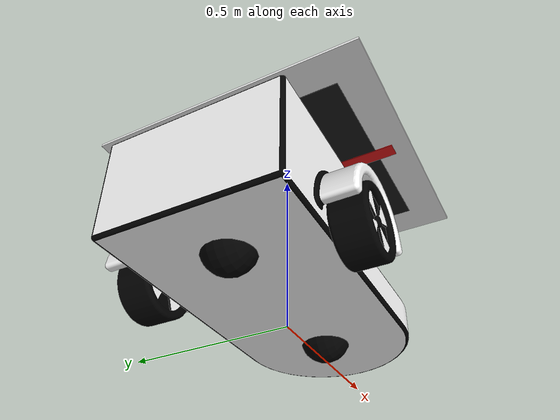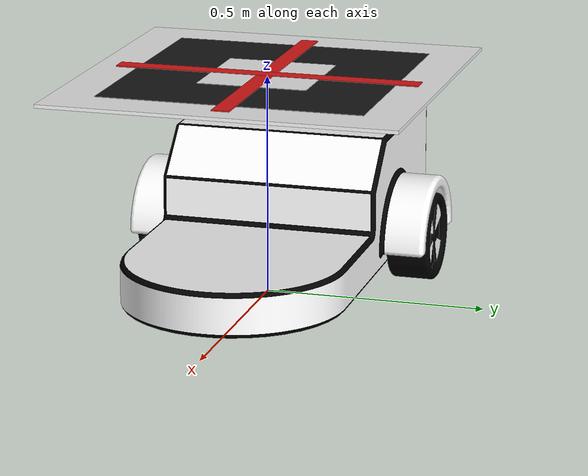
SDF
<?xml version="1.0"?>
<sdf version="1.6">
  <model name='rover_differential_aruco'>
    <!--Links-->
    <link name='base_link'>
      <pose relative_to='__model__'>0 0 0.1 0 0 0</pose>
      <inertial>
        <mass>5.0</mass>
        <pose>-0.2 0 0 0 0 0</pose> <!-- Center of mass offset to wheel axis-->
        <inertia>
          <ixx>0.030208333</ixx>
          <ixy>0.0</ixy>
          <ixz>0.0</ixz>
          <iyy>0.108333333</iyy>
          <iyz>0.0</iyz>
          <izz>0.130208333</izz>
        </inertia>
      </inertial>
      <visual name='visual'>
        <pose>0 0 -0.05 0 0 0</pose>
        <geometry>
          <mesh>
            <uri>model://rover_differential/meshes/rover_differential_base.dae</uri>
          </mesh>
        </geometry>
      </visual>
      <collision name='collision'>
        <geometry>
          <box>
            <size>1 0.5 0.1</size>
          </box>
        </geometry>
      </collision>

      <!--Sensors-->
      <sensor name="air_pressure_sensor" type="air_pressure">
        <gz_frame_id>base_link</gz_frame_id>
        <always_on>1</always_on>
        <update_rate>50</update_rate>
        <air_pressure>
          <!-- Noise modeled after BMP390 -->
          <pressure>
            <noise type="gaussian">
              <mean>0</mean>
              <stddev>3</stddev>
            </noise>
          </pressure>
        </air_pressure>
      </sensor>
      <sensor name="magnetometer_sensor" type="magnetometer">
        <gz_frame_id>base_link</gz_frame_id>
        <always_on>1</always_on>
        <update_rate>100</update_rate>
        <magnetometer>
          <!-- TODO: update to fix units and coordinate system when we move past Harmonic -->
          <!-- See https://github.com/gazebosim/gz-sim/pull/2460 -->
          <!-- 3mgauss RMS: NOTE: noise is in tesla but sensor reports data in gauss -->
          <!-- Noise modeled after IIS2MDC -->
          <x>
            <noise type="gaussian">
              <stddev>0.0001</stddev>
            </noise>
          </x>
          <y>
            <noise type="gaussian">
              <stddev>0.0001</stddev>
            </noise>
          </y>
          <z>
            <noise type="gaussian">
              <stddev>0.0001</stddev>
            </noise>
          </z>
        </magnetometer>
      </sensor>
      <sensor name="imu_sensor" type="imu">
        <gz_frame_id>base_link</gz_frame_id>
        <always_on>1</always_on>
        <update_rate>250</update_rate>
        <imu>
          <angular_velocity>
            <!-- Noise modeled after IIM42653 -->
            <!-- 0.05 deg/s converted to rad/s -->
            <x>
              <noise type="gaussian">
                <mean>0.0</mean>
                <stddev>0.0008726646</stddev>
              </noise>
            </x>
            <y>
              <noise type="gaussian">
                <mean>0.0</mean>
                <stddev>0.0008726646</stddev>
              </noise>
            </y>
            <z>
              <noise type="gaussian">
                <mean>0.0</mean>
                <stddev>0.0008726646</stddev>
              </noise>
            </z>
          </angular_velocity>
          <linear_acceleration>
            <!-- Noise modeled after IIM42653 -->
            <!-- X & Y axis: 0.65 mg-rms converted to m/ss -->
            <x>
              <noise type="gaussian">
                <mean>0.0</mean>
                <stddev>0.00637</stddev>
              </noise>
            </x>
            <y>
              <noise type="gaussian">
                <mean>0.0</mean>
                <stddev>0.00637</stddev>
              </noise>
            </y>
            <!-- Z axis: 0.70 mg-rms converted to m/ss-->
            <z>
              <noise type="gaussian">
                <mean>0.0</mean>
                <stddev>0.00686</stddev>
              </noise>
            </z>
          </linear_acceleration>
        </imu>
      </sensor>
      <sensor name="navsat_sensor" type="navsat">
        <gz_frame_id>base_link</gz_frame_id>
        <always_on>1</always_on>
        <update_rate>30</update_rate>
      </sensor>
    </link>

    <link name='wheel_rear_left_link'>
      <pose relative_to="base_link">-0.2 0.3 0 -1.5707 0 0</pose>
      <inertial>
        <mass>0.5</mass>
        <inertia>
          <ixx>0.000807292</ixx>
          <ixy>0</ixy>
          <ixz>0</ixz>
          <iyy>0.000807292</iyy>
          <iyz>0</iyz>
          <izz>0.00140625</izz>
        </inertia>
      </inertial>
      <visual name='visual'>
        <pose>0 0 0 0 0 0</pose>
        <geometry>
          <mesh>
            <uri>model://rover_differential/meshes/rover_differential_wheel.dae</uri>
          </mesh>
        </geometry>
      </visual>
      <collision name='collision'>
        <geometry>
          <cylinder>
            <radius>0.1</radius>
            <length>0.1</length>
          </cylinder>
        </geometry>
        <surface>
          <friction>
            <ode>
              <mu>1.0</mu>
              <mu2>1.0</mu2>
              <fdir1>1 0 0</fdir1>
              <slip1>0.0</slip1>
              <slip2>0.0</slip2>
            </ode>
          </friction>
        </surface>
      </collision>
    </link>

    <link name='wheel_rear_right_link'>
      <pose relative_to="base_link">-0.2 -0.3 0 -1.5707 0 0</pose>
      <inertial>
        <mass>0.5</mass>
        <inertia>
          <ixx>0.000807292</ixx>
          <ixy>0</ixy>
          <ixz>0</ixz>
          <iyy>0.000807292</iyy>
          <iyz>0</iyz>
          <izz>0.00140625</izz>
        </inertia>
      </inertial>
      <visual name='visual'>
        <pose>0 0 0 0 0 0</pose>
        <geometry>
          <mesh>
            <uri>model://rover_differential/meshes/rover_differential_wheel.dae</uri>
          </mesh>
        </geometry>
      </visual>
      <collision name='collision'>
        <geometry>
          <cylinder>
            <radius>0.1</radius>
            <length>0.1</length>
          </cylinder>
        </geometry>
        <surface>
          <friction>
            <ode>
              <mu>1.0</mu>
              <mu2>1.0</mu2>
              <fdir1>1 0 0</fdir1>
              <slip1>0.0</slip1>
              <slip2>0.0</slip2>
            </ode>
          </friction>
        </surface>
      </collision>
    </link>

    <link name='cast_wheel_front_link'>
      <pose relative_to="base_link">0.25 0 -0.025 -1.5707 0 0</pose>
      <inertial>
        <mass>1</mass>
        <inertia>
          <ixx>0.016</ixx>
          <ixy>0</ixy>
          <ixz>0</ixz>
          <iyy>0.016</iyy>
          <iyz>0</iyz>
          <izz>0.016</izz>
        </inertia>
      </inertial>
      <visual name='visual'>
        <geometry>
          <sphere>
            <radius>0.075</radius>
          </sphere>
        </geometry>
        <material>
          <ambient>0 0 0 1</ambient>
          <diffuse>0 0 0 1</diffuse>
          <specular>0 0 0 0</specular>
          <emissive>0 0 0 1</emissive>
        </material>
      </visual>
      <collision name='collision'>
        <geometry>
          <sphere>
            <radius>0.075</radius>
          </sphere>
        </geometry>
        <surface>
          <friction>
            <ode>
              <mu>0</mu>
              <mu2>0</mu2>
              <fdir1>1 0 0</fdir1>
            </ode>
          </friction>
        </surface>
      </collision>
    </link>

    <link name='cast_wheel_rear_link'>
      <pose relative_to="base_link">-0.3 0 -0.025 -1.5707 0 0</pose>
      <inertial>
        <mass>1</mass>
        <inertia>
          <ixx>0.016</ixx>
          <ixy>0</ixy>
          <ixz>0</ixz>
          <iyy>0.016</iyy>
          <iyz>0</iyz>
          <izz>0.016</izz>
        </inertia>
      </inertial>
      <visual name='visual'>
        <geometry>
          <sphere>
            <radius>0.075</radius>
          </sphere>
        </geometry>
        <material>
          <ambient>0 0 0 1</ambient>
          <diffuse>0 0 0 1</diffuse>
          <specular>0 0 0 0</specular>
          <emissive>0 0 0 1</emissive>
        </material>
      </visual>
      <collision name='collision'>
        <geometry>
          <sphere>
            <radius>0.075</radius>
          </sphere>
        </geometry>
        <surface>
          <friction>
            <ode>
              <mu>0</mu>
              <mu2>0</mu2>
              <fdir1>1 0 0</fdir1>
            </ode>
          </friction>
        </surface>
      </collision>
    </link>

    <!-- Joints -->
    <joint name='wheel_rear_left_joint' type='revolute'>
      <pose relative_to='wheel_rear_left_link' />
      <parent>base_link</parent>
      <child>wheel_rear_left_link</child>
      <axis>
        <xyz expressed_in='__model__'>0 1 0</xyz>
      </axis>
    </joint>

    <joint name='wheel_rear_right_joint' type='revolute'>
      <pose relative_to='wheel_rear_right_link' />
      <parent>base_link</parent>
      <child>wheel_rear_right_link</child>
      <axis>
        <xyz expressed_in='__model__'>0 1 0</xyz>
      </axis>
    </joint>

    <joint name='cast_wheel_front_joint' type='ball'>
      <pose relative_to='cast_wheel_front_link' />
      <parent>base_link</parent>
      <child>cast_wheel_front_link</child>
    </joint>

    <joint name='cast_wheel_rear_link' type='ball'>
      <pose relative_to='cast_wheel_rear_link' />
      <parent>base_link</parent>
      <child>cast_wheel_rear_link</child>
    </joint>

    <!--Plugins-->
    <plugin filename="gz-sim-joint-controller-system" name="gz::sim::systems::JointController">
      <joint_name>wheel_rear_left_joint</joint_name>
      <sub_topic>command/motor_speed</sub_topic>
      <control_type>velocity</control_type>
      <use_actuator_msg>true</use_actuator_msg>
      <actuator_number>1</actuator_number>
    </plugin>

    <plugin filename="gz-sim-joint-controller-system" name="gz::sim::systems::JointController">
      <joint_name>wheel_rear_right_joint</joint_name>
      <sub_topic>command/motor_speed</sub_topic>
      <control_type>velocity</control_type>
      <use_actuator_msg>true</use_actuator_msg>
      <actuator_number>0</actuator_number>
    </plugin>

    <plugin filename="gz-sim-joint-state-publisher-system"
      name="gz::sim::systems::JointStatePublisher">
      <joint_name>wheel_rear_left_joint</joint_name>
      <joint_name>wheel_rear_right_joint</joint_name>
    </plugin>

  <!-- ArUco Landing Marker -->
  <link name='aruco_link'>
    <pose relative_to='base_link'>0 0 0.40 0 0 0</pose>
    <inertial>
      <mass>0.01</mass>
      <inertia><ixx>0.0001</ixx><ixy>0</ixy><ixz>0</ixz>
               <iyy>0.0001</iyy><iyz>0</iyz><izz>0.0001</izz></inertia>
    </inertial>
    <visual name='aruco_visual'>
      <geometry>
        <box><size>0.6 0.6 0.01</size></box>
      </geometry>
      <material>
        <diffuse>0.1 0.1 0.1 1</diffuse>
        <ambient>0.1 0.1 0.1 1</ambient>
      </material>
    </visual>
    <!-- 흰 테두리 -->
    <visual name='aruco_border'>
      <geometry>
        <box><size>0.8 0.8 0.008</size></box>
      </geometry>
      <material>
        <diffuse>0.95 0.95 0.95 1</diffuse>
        <ambient>0.95 0.95 0.95 1</ambient>
      </material>
    </visual>
    <!-- 중심 흰 사각형 -->
    <visual name='aruco_center'>
      <geometry>
        <box><size>0.25 0.25 0.012</size></box>
      </geometry>
      <material>
        <diffuse>0.95 0.95 0.95 1</diffuse>
        <ambient>0.95 0.95 0.95 1</ambient>
      </material>
    </visual>
    <!-- 빨간 십자 가로 -->
    <visual name='cross_h'>
      <geometry>
        <box><size>0.7 0.04 0.013</size></box>
      </geometry>
      <material>
        <diffuse>0.9 0.1 0.1 1</diffuse>
        <ambient>0.9 0.1 0.1 1</ambient>
      </material>
    </visual>
    <!-- 빨간 십자 세로 -->
    <visual name='cross_v'>
      <geometry>
        <box><size>0.04 0.7 0.013</size></box>
      </geometry>
      <material>
        <diffuse>0.9 0.1 0.1 1</diffuse>
        <ambient>0.9 0.1 0.1 1</ambient>
      </material>
    </visual>
  </link>

  <!-- ArUco 마커를 로버 본체에 고정 -->
  <joint name='aruco_joint' type='fixed'>
    <parent>base_link</parent>
    <child>aruco_link</child>
  </joint>

</model>
</sdf>
